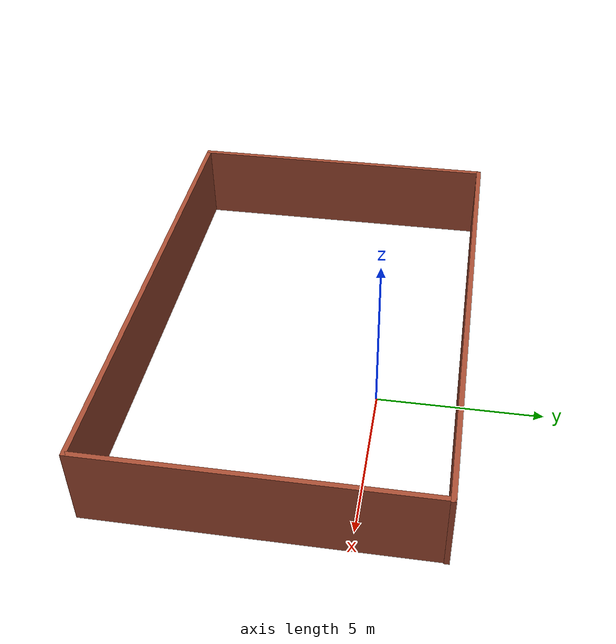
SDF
<?xml version='1.0'?>
<sdf version='1.5'>
  <model name='Walls_small'>
    <pose frame=''>-1.8651 -2.44017 0 0 -0 0</pose>
    <link name='Wall_1'>
      <collision name='Wall_1_Collision'>
        <geometry>
          <box>
            <size>10 0.15 2.5</size>
          </box>
        </geometry>
        <pose frame=''>0 0 1.25 0 -0 0</pose>
      </collision>
      <visual name='Wall_1_Visual'>
        <pose frame=''>0 0 1.25 0 -0 0</pose>
        <geometry>
          <box>
            <size>10 0.15 2.5</size>
          </box>
        </geometry>
        <material>
          <script>
            <uri>file://media/materials/scripts/gazebo.material</uri>
            <name>Gazebo/Bricks</name>
          </script>
          <ambient>1 1 1 1</ambient>
        </material>
      </visual>
      <pose frame=''>-7.43823 0 0 0 0 -1.5708</pose>
    </link>
    <link name='Wall_2'>
      <collision name='Wall_2_Collision'>
        <geometry>
          <box>
            <size>15 0.15 2.5</size>
          </box>
        </geometry>
        <pose frame=''>0 0 1.25 0 -0 0</pose>
      </collision>
      <visual name='Wall_2_Visual'>
        <pose frame=''>0 0 1.25 0 -0 0</pose>
        <geometry>
          <box>
            <size>15 0.15 2.5</size>
          </box>
        </geometry>
        <material>
          <script>
            <uri>file://media/materials/scripts/gazebo.material</uri>
            <name>Gazebo/Bricks</name>
          </script>
          <ambient>1 1 1 1</ambient>
        </material>
      </visual>
      <pose frame=''>-0.013224 -4.925 0 0 -0 0</pose>
    </link>
    <link name='Wall_3'>
      <collision name='Wall_3_Collision'>
        <geometry>
          <box>
            <size>10 0.15 2.5</size>
          </box>
        </geometry>
        <pose frame=''>0 0 1.25 0 -0 0</pose>
      </collision>
      <visual name='Wall_3_Visual'>
        <pose frame=''>0 0 1.25 0 -0 0</pose>
        <geometry>
          <box>
            <size>10 0.15 2.5</size>
          </box>
        </geometry>
        <material>
          <script>
            <uri>file://media/materials/scripts/gazebo.material</uri>
            <name>Gazebo/Bricks</name>
          </script>
          <ambient>1 1 1 1</ambient>
        </material>
      </visual>
      <pose frame=''>7.41178 0 0 0 -0 1.5708</pose>
    </link>
    <link name='Wall_4'>
      <collision name='Wall_4_Collision'>
        <geometry>
          <box>
            <size>15 0.15 2.5</size>
          </box>
        </geometry>
        <pose frame=''>0 0 1.25 0 -0 0</pose>
      </collision>
      <visual name='Wall_4_Visual'>
        <pose frame=''>0 0 1.25 0 -0 0</pose>
        <geometry>
          <box>
            <size>15 0.15 2.5</size>
          </box>
        </geometry>
        <material>
          <script>
            <uri>file://media/materials/scripts/gazebo.material</uri>
            <name>Gazebo/Bricks</name>
          </script>
          <ambient>1 1 1 1</ambient>
        </material>
      </visual>
      <pose frame=''>0.013226 4.925 0 0 -0 3.14159</pose>
    </link>
    <static>1</static>
  </model>
</sdf>
